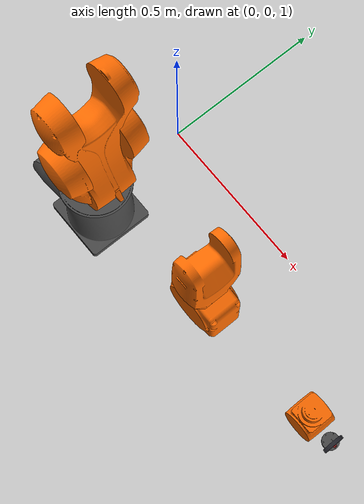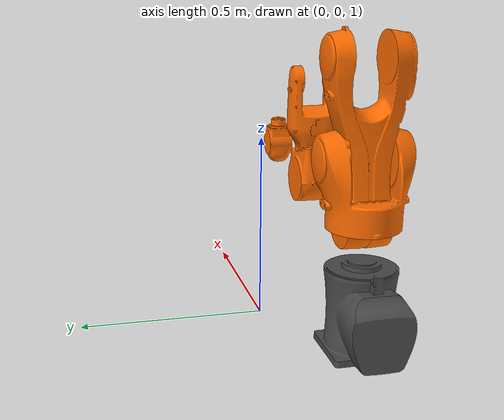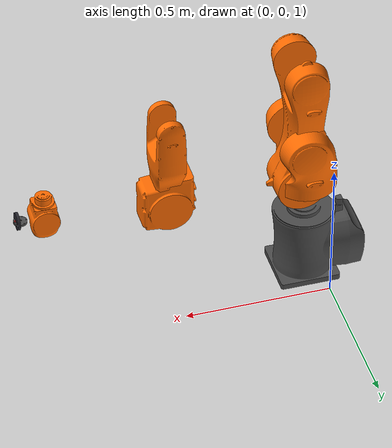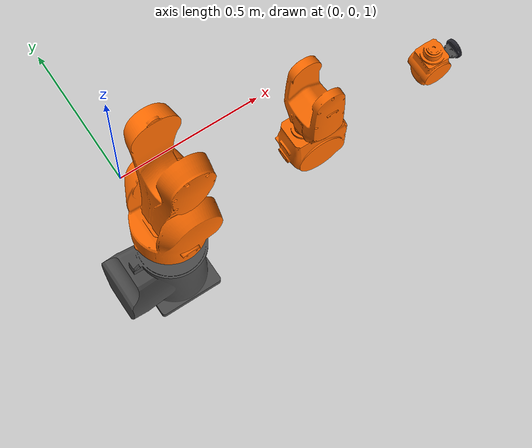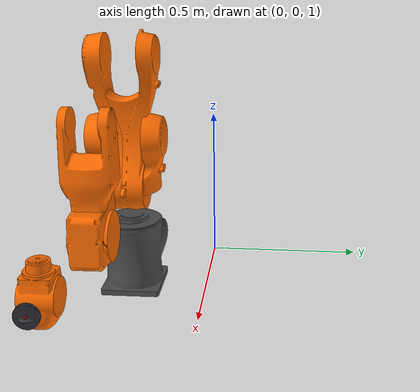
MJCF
<mujoco>
  <compiler meshdir="../assets/urdf/meshes/" angle="radian" />

  <asset>
    <mesh name="base_link" content_type="model/stl" file="base_link.stl" />
    <mesh name="link_1" content_type="model/stl" file="link_1.stl" />
    <mesh name="link_2" content_type="model/stl" file="link_2.stl" />
    <mesh name="link_3" content_type="model/stl" file="link_3.stl" />
    <mesh name="link_4" content_type="model/stl" file="link_4.stl" />
    <mesh name="link_5" content_type="model/stl" file="link_5.stl" />
    <mesh name="link_6" content_type="model/stl" file="link_6.stl" />
  </asset>

  <worldbody>

    <body name="kuka_base" pos="0 -0.3 0.85">

      <geom type="mesh" rgba="0.3 0.3 0.3 1" mesh="base_link" contype="0" conaffinity="0" />

      <body name="link_1" pos="0 0 0.4">
        <joint name="joint_a1" pos="0 0 0" axis="0 0 -1" range="-2.96706 2.96706" limited="true" />
        <geom type="mesh" rgba="1 0.42 0 1" mesh="link_1" contype="1" conaffinity="2" />

        <body name="link_2" pos="0.025 0 0">
          <joint name="joint_a2" pos="0 0 0" axis="0 1 0" range="-3.31613 0.785398" limited="true" />
          <geom type="mesh" rgba="1 0.42 0 1" mesh="link_2" contype="1" conaffinity="2" />

          <body name="link_3" pos="0.455 0 0">
            <joint name="joint_a3" pos="0 0 0" axis="0 1 0" range="-2.0944 2.72271" limited="true" />
            <geom type="mesh" rgba="1 0.42 0 1" mesh="link_3" contype="1" conaffinity="2" />

            <body name="link_4" pos="0 0 0.035">
              <joint name="joint_a4" pos="0 0 0" axis="-1 0 0" range="-3.22886 3.22886" limited="true" />
              <geom type="mesh" rgba="1 0.42 0 1" mesh="link_4" contype="1" conaffinity="2" />

              <body name="link_5" pos="0.42 0 0">
                <joint name="joint_a5" pos="0 0 0" axis="0 1 0" range="-2.0944 2.0944" limited="true" />
                <geom type="mesh" rgba="1 0.42 0 1" mesh="link_5" contype="1" conaffinity="2" />

                <body name="link_6" pos="0.08 0 0">
                  <joint name="joint_a6" pos="0 0 0" axis="-1 0 0" range="-6.10865 6.10865" limited="true" />
                  <geom type="mesh" rgba="0.3 0.3 0.3 1" mesh="link_6" contype="1" conaffinity="2" />

                  <body name="suction_mount" pos="0.01 0 0">
  <joint name="cup_compliance" type="slide" axis="1 0 0" limited="true" range="-0.010 0" stiffness="800" damping="5" springref="0" />
  <body name="suction_pad">
    <geom name="cup_geom" type="cylinder" fromto="-0.005 0 0  0.005 0 0" size="0.03" rgba="0.15 0.15 0.18 1" margin="0.004" solref="0.02 1" solimp="0.9 0.95 0.001" contype="1" conaffinity="6" mass="0.05" />
    <site name="suction_tip_site" pos="0.006 0 0" euler="0 -90 0" size="0.005" rgba="1 0 0 0.5" />
    <camera name="cam_wrist" pos="-0.02 0 0.10" xyaxes="0 1 0 -0.342 0 -0.940" fovy="80" />
    <site name="cup_contact_site" pos="0.006 0 0" size="0.004" rgba="1 0.5 0 0" />
  </body>
</body></body>

              </body>
            </body>
          </body>
        </body>
      </body>

    </body>
  </worldbody>

  <actuator>

    <position name="act_a1" joint="joint_a1" kp="500" forcelimited="true" forcerange="-500 500" />
    <position name="act_a2" joint="joint_a2" kp="500" forcelimited="true" forcerange="-500 500" />
    <position name="act_a3" joint="joint_a3" kp="500" forcelimited="true" forcerange="-300 300" />
    <position name="act_a4" joint="joint_a4" kp="300" forcelimited="true" forcerange="-200 200" />
    <position name="act_a5" joint="joint_a5" kp="200" forcelimited="true" forcerange="-100 100" />
    <position name="act_a6" joint="joint_a6" kp="100" forcelimited="true" forcerange="-50  50" />
  <adhesion name="act_vacuum" body="suction_pad" ctrlrange="0 1" gain="40" /></actuator>

</mujoco>
